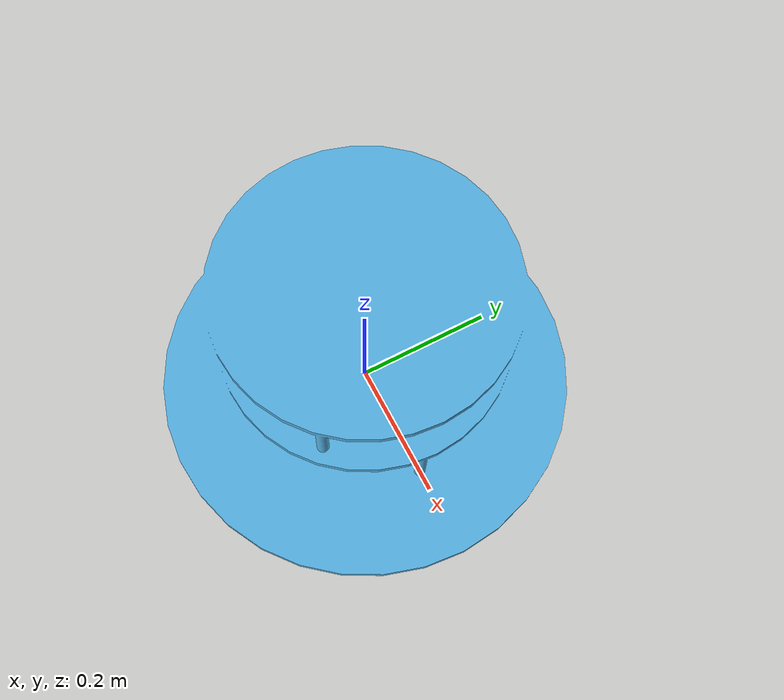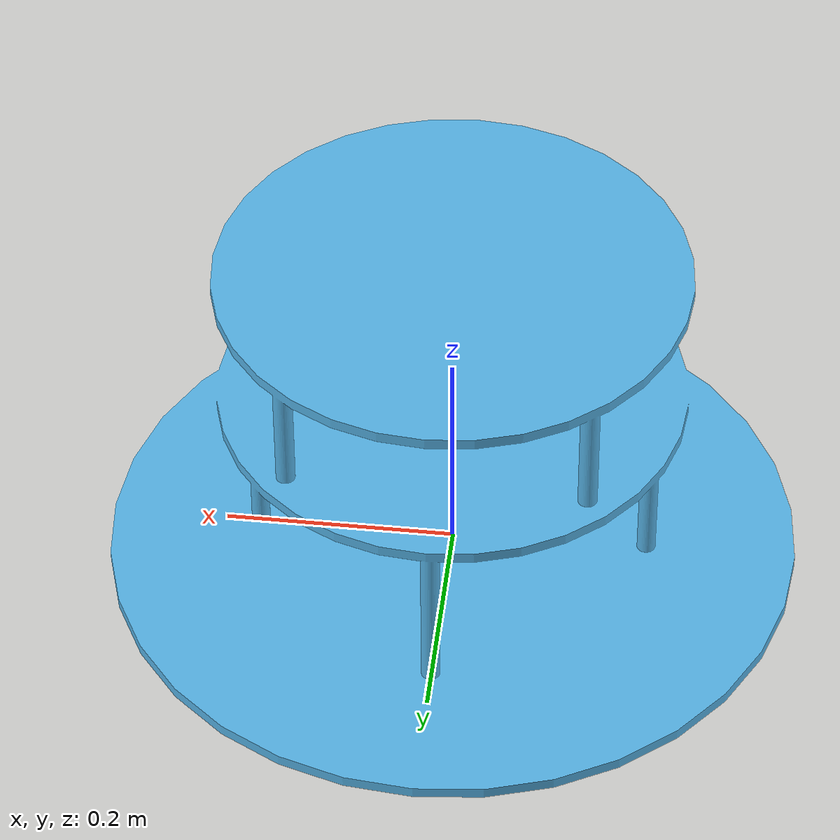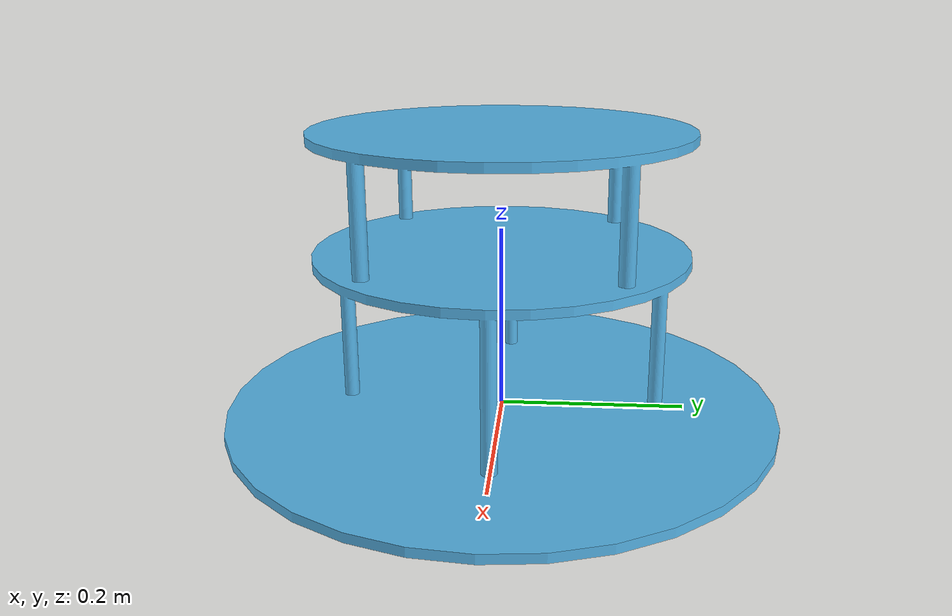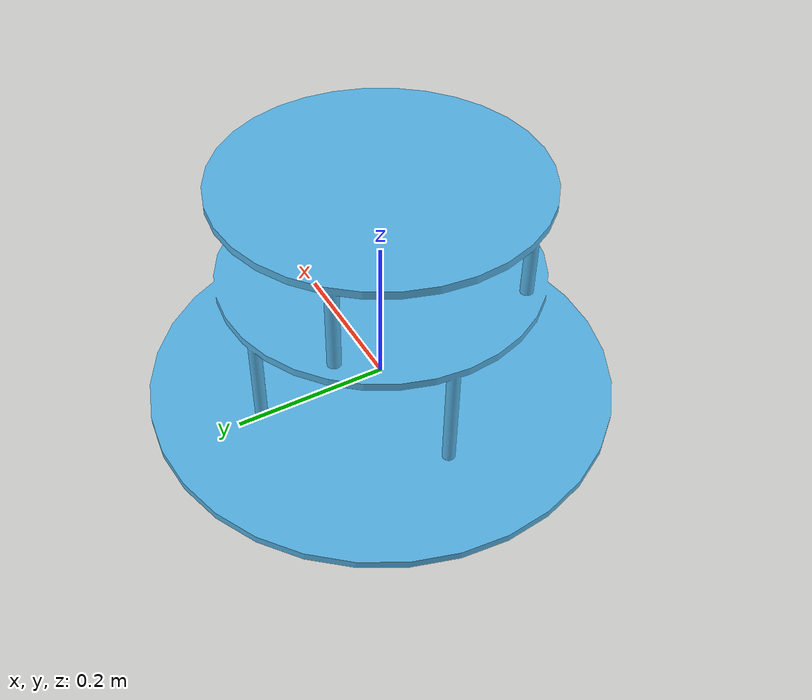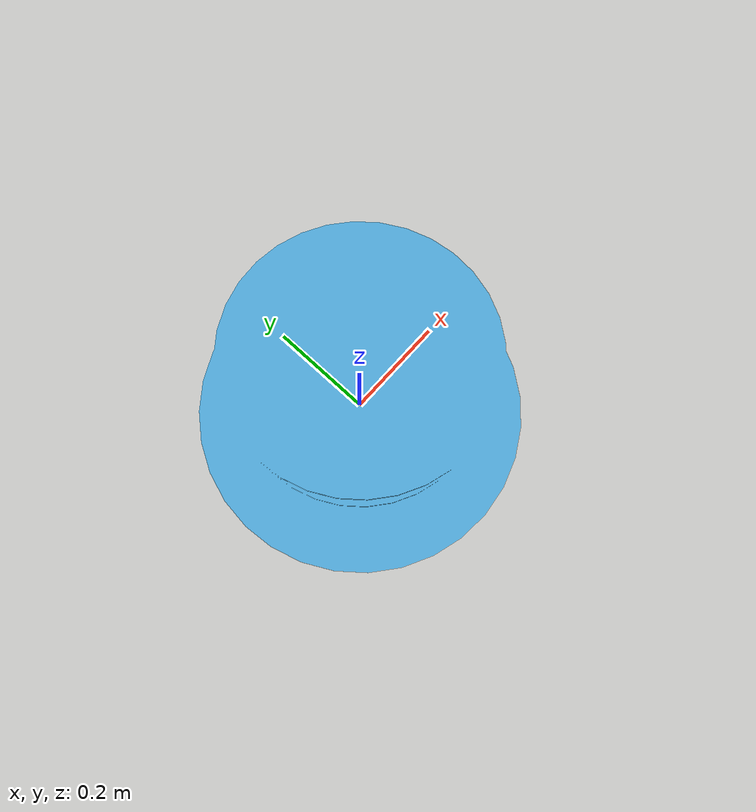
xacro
<?xml version="1.0"?>
<robot xmlns:xacro="http://wiki.ros.org/xacro" name="fss">
  <xacro:arg name="namespace" default="fss"/>
  <xacro:arg name="debug" default="false"/>
  <xacro:arg name="inertial_reference_frame" default="world"/>
  <xacro:arg name="controller_type" default="effort"/>
  <xacro:property name="controller" value="$(arg controller_type)"/>

  <xacro:include filename="$(find fss_description)/urdf/fss_base.xacro"/>
  <xacro:fss_base namespace="$(arg namespace)"/>

</robot>

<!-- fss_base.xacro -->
<robot name="fss" xmlns:xacro="https://www.ros.org/wiki/xacro">

  <xacro:arg name="namespace" default="fss"/>

  <xacro:macro name="fss_base" params="namespace">
    <!-- "Dummy base link to eliminate root link inertia warning -->
    <link name="$(arg namespace)/base_link"/>

    <!-- Start of main robot body -->
    <link name="$(arg namespace)/fss_link">
      <inertial>
        <origin xyz="0 0 0" rpy="0 0 0"/>
        <mass value="10.0"/>
        <inertia
          ixx="10.0" ixy="0.0" ixz="0.0"
          iyy="10.0" iyz="0.0"
          izz="10.0"/>
      </inertial>
      <visual>
        <origin xyz="0 0 0" rpy="0 0 0"/>
        <geometry>
          <mesh filename="file://$(find fss_description)/meshes/fss.dae"/>
        </geometry>
      </visual>
      <collision>
        <origin xyz="0 0 0" rpy="0 0 0"/>
        <geometry>
          <mesh filename="file://$(find fss_description)/meshes/fss.dae"/>
        </geometry>
      </collision>
    </link>

    <!-- Connect dummy link to main link -->
    <joint name="$(arg namespace)/fss_base_joint" type="fixed">
      <origin xyz="0 0 0" rpy="0 0 0"/>
      <parent link="$(arg namespace)/base_link"/>
      <child link="$(arg namespace)/fss_link"/>
    </joint>

    <gazebo>
      <plugin name="gazebo_ros_control" filename="libgazebo_ros_control.so">
      </plugin>
    </gazebo>

    <xacro:arg name="inertial_reference_frame" default="world"/>

    <xacro:include filename="$(find sc_gazebo_plugins)/urdf/reaction_wheel.xacro"/>
    <xacro:reaction_wheel_macro namespace="$(arg namespace)" wheel_id="0">
      <origin xyz="0 0 0" rpy="0 0 0"/>
    </xacro:reaction_wheel_macro>

  </xacro:macro>
</robot>

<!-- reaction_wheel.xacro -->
<robot xmlns:xacro="http://www.ros.org/wiki/xacro">

  <xacro:macro name="reaction_wheel_macro" params="namespace wheel_id *origin">
    <link name="${namespace}/wheel_${wheel_id}_link">
      <inertial>
        <mass value="0.00001"/>
        <inertia ixx="0.00001" ixy="0.0" ixz="0.0"
                 iyy="0.00001" iyz="0.0"
                 izz="0.00001"/>
      </inertial>
      <visual>
        <geometry>
          <cylinder length="0.0000001" radius="0.0000001"/>
        </geometry>
        <origin xyz="0 0 0" rpy="0 0 0"/>
      </visual>
      <collision>
        <geometry>
          <cylinder length="0.0000001" radius="0.0000001"/>
        </geometry>
      </collision>
    </link>

    <joint name="${namespace}/wheel_${wheel_id}_joint" type="revolute">
      <xacro:insert_block name="origin"/>
      <parent link="${namespace}/base_link"/>
      <child link="${namespace}/wheel_${wheel_id}_link"/>
      <limit effort="0" lower="0" upper="0" velocity="0"/>
    </joint>

    <gazebo>
      <plugin name="${namespace}_${wheel_id}_reaction_wheel_model" filename="libsc_reaction_wheel_plugin.so">
        <reaction_wheel>
          <linkName>${namespace}/base_link</linkName>
          <jointName>${namespace}/wheel_${wheel_id}_joint</jointName>
          <cmdTopic>${namespace}/wheels/wheel_${wheel_id}</cmdTopic>
        </reaction_wheel>
      </plugin>
    </gazebo>

    <gazebo reference="${namespace}/wheel_${wheel_id}_link">
      <selfCollide>false</selfCollide>
    </gazebo>

  </xacro:macro>

</robot>
